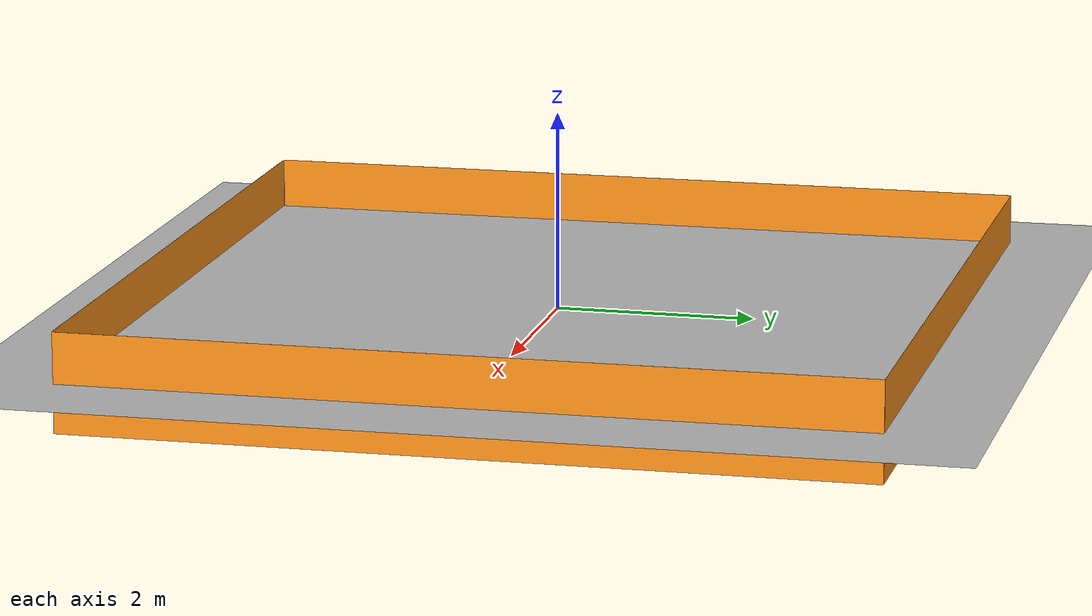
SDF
<sdf version="1.6">
 <world name="default">
  <light name="sun" type="directional">
   <pose>0 0 10 0 -0 0</pose>
   <diffuse>0.8 0.8 0.8 1</diffuse>
   <specular>0.1 0.1 0.1 1</specular>
   <attenuation>
    <range>1000</range>
    <constant>0.9</constant>
    <linear>0.01</linear>
    <quadratic>0.001</quadratic>
   </attenuation>
   <direction>-0.5 0.5 -1</direction>
  </light>
  <model name="ground_plane">
   <static>1</static>
   <link name="link">
    <collision name="collision">
     <geometry><plane><normal>0 0 1</normal><size>100 100</size></plane></geometry>
     <surface><friction><ode><mu>100</mu><mu2>50</mu2></ode></friction></surface>
    </collision>
    <visual name="visual">
     <cast_shadows>0</cast_shadows>
     <geometry><plane><normal>0 0 1</normal><size>100 100</size></plane></geometry>
     <material>
      <script><uri>file://media/materials/scripts/gazebo.material</uri><name>Gazebo/Grey</name></script>
     </material>
    </visual>
   </link>
  </model>
  <gravity>0 0 -9.8</gravity>
  <magnetic_field>6e-06 2.3e-05 -4.2e-05</magnetic_field>
  <atmosphere type="adiabatic"/>
  <physics name="default_physics" default="0" type="ode">
   <max_step_size>0.001</max_step_size>
   <real_time_factor>1</real_time_factor>
   <real_time_update_rate>1000</real_time_update_rate>
  </physics>
  <scene><ambient>0.4 0.4 0.4 1</ambient><background>0.7 0.7 0.7 1</background><shadows>1</shadows></scene>
  <spherical_coordinates>
   <surface_model>EARTH_WGS84</surface_model>
   <latitude_deg>0</latitude_deg>
   <longitude_deg>0</longitude_deg>
   <elevation>0</elevation>
   <heading_deg>0</heading_deg>
  </spherical_coordinates>
  <model name="wall_0_clone">
   <static>1</static>
   <link name="link">
    <collision name="collision"><geometry><box><size>7.95243 0.001 1</size></box></geometry></collision>
    <visual name="visual">
     <geometry><box><size>7.95243 0.001 1</size></box></geometry>
     <material>
      <script><name>Gazebo/Orange</name><uri>file://media/materials/scripts/gazebo.material</uri></script>
     </material>
    </visual>
   </link>
   <pose>0 -4 0 0 0 -3.14159</pose>
  </model>
  <model name="wall_0_clone_clone">
   <static>1</static>
   <link name="link">
    <collision name="collision"><geometry><box><size>7.99771 0.001 1</size></box></geometry></collision>
    <visual name="visual">
     <geometry><box><size>7.99771 0.001 1</size></box></geometry>
     <material>
      <script><name>Gazebo/Orange</name><uri>file://media/materials/scripts/gazebo.material</uri></script>
     </material>
    </visual>
   </link>
   <pose>4 0 0 0 -0 1.5708</pose>
  </model>
  <model name="wall_0_clone_clone_clone">
   <static>1</static>
   <link name="link">
    <collision name="collision"><geometry><box><size>7.99771 0.001 1</size></box></geometry></collision>
    <visual name="visual">
     <geometry><box><size>7.99771 0.001 1</size></box></geometry>
     <material>
      <script><name>Gazebo/Orange</name><uri>file://media/materials/scripts/gazebo.material</uri></script>
     </material>
    </visual>
   </link>
   <pose>-4 0 0 0 -0 1.5708</pose>
  </model>
  <model name="wall_0_clone_clone_0">
   <static>1</static>
   <link name="link">
    <collision name="collision"><geometry><box><size>7.99771 0.001 1</size></box></geometry></collision>
    <visual name="visual">
     <geometry><box><size>7.99771 0.001 1</size></box></geometry>
     <material>
      <script><name>Gazebo/Orange</name><uri>file://media/materials/scripts/gazebo.material</uri></script>
     </material>
    </visual>
   </link>
   <pose>0 4 0 0 0 -3.14159</pose>
  </model>
 </world>
</sdf>
